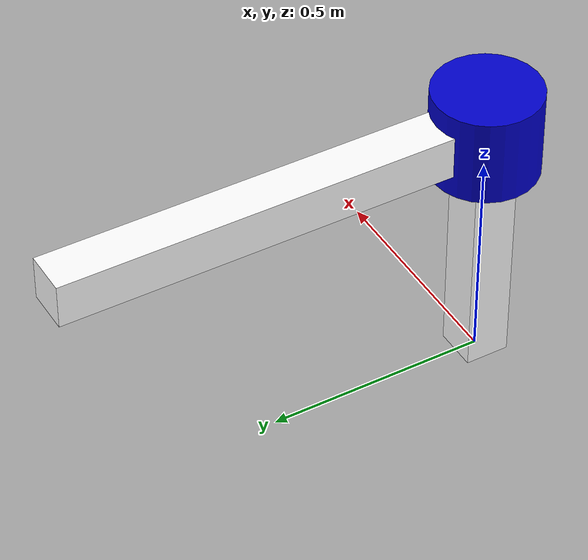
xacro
<?xml version="1.0" ?>

<robot name="r2d2" xmlns:xacro="http://www.ros.org/wiki/xacro">

	<material name="blue">
		<color rgba="0 0 0.8 1"/>
    </material>

    <material name="white">
		<color rgba="1 1 1 1"/>
    </material>

    <link name="base">
        <visual>
            <origin rpy="0 0 0" xyz="0 0 0.25"/>
            <geometry>
                <box size=".1 .1 .5"/>
            </geometry>
			<material name="white"/>
        </visual>
    </link>

    <joint name="lowerJoint" type="revolute">
        <axis xyz="0 0 1" />
        <limit effort="1000.0" lower="-3.14" upper="3.14" velocity="0.5" />
        <origin rpy="0 0 0" xyz="0 0 0.5"/>
        <parent link="base"/>
        <child link="lowerLink"/>
    </joint>
    <link name="lowerLink">
        <visual>
            <origin rpy="0 0 0" xyz="0 0 0.1"/>
            <geometry>
                <cylinder radius="0.12" length="0.2"/>
            </geometry>
			<material name="blue"/>
        </visual>
    </link>
    <joint name="upperJoint" type="revolute">
        <axis xyz="1 0 0" />
        <limit effort="1000.0" lower="-3.14" upper="3.14" velocity="0.5" />
        <origin rpy="0 0 0" xyz="0 0 0.1"/>
        <parent link="lowerLink"/>
        <child link="upperLink"/>
    </joint>
    <link name="upperLink">
        <visual>
            <origin rpy="0 0 0" xyz="0 0.5 0"/>
            <geometry>
                <box size=".1 1 .1"/>
            </geometry>
			<material name="white"/>
        </visual>
    </link>
</robot>
